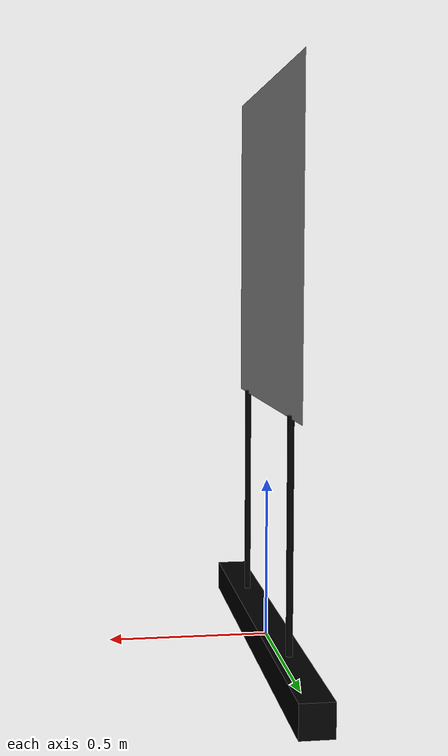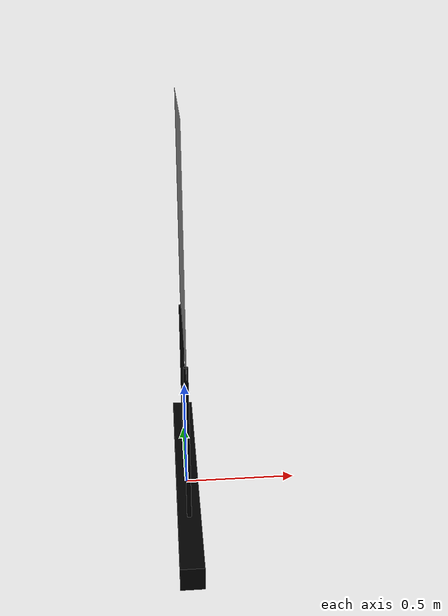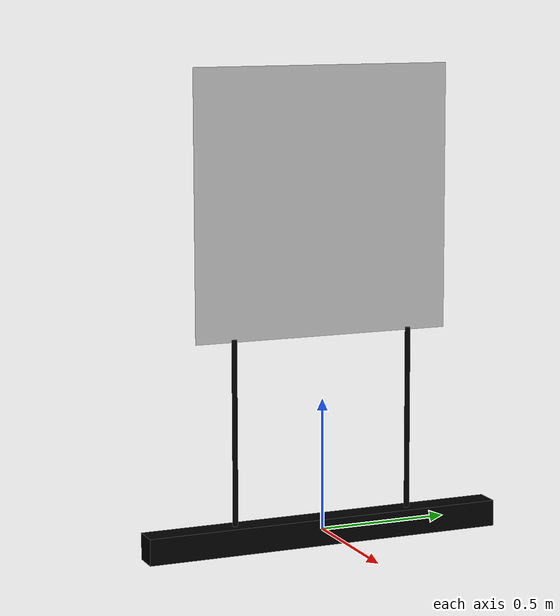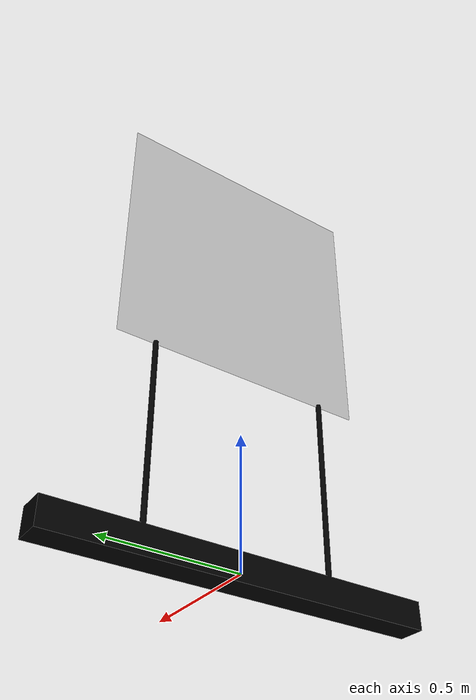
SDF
<?xml version="1.0" ?>
<sdf version="1.9">
    <model name="buoy2">
        <static>true</static>
        <link name="link">
            <visual name="buoy2_visual">
                <geometry>
                    <mesh>
                        <uri>buoy2.dae</uri>
                    </mesh>
                </geometry>
            </visual>
            <collision name="buoy2_collision">
                <geometry>
                    <mesh>
                        <uri>buoy2.dae</uri>
                    </mesh>
                </geometry>
            </collision>
        </link>
    </model>
</sdf>
